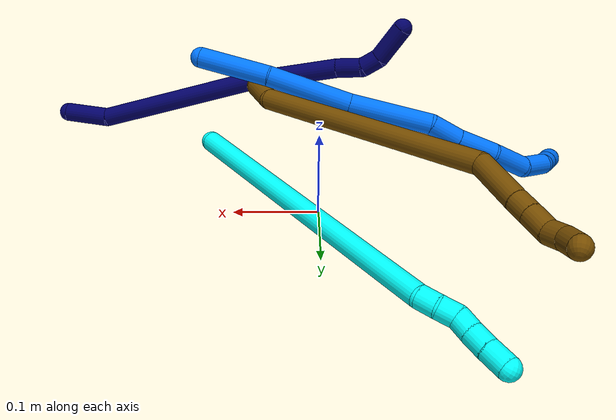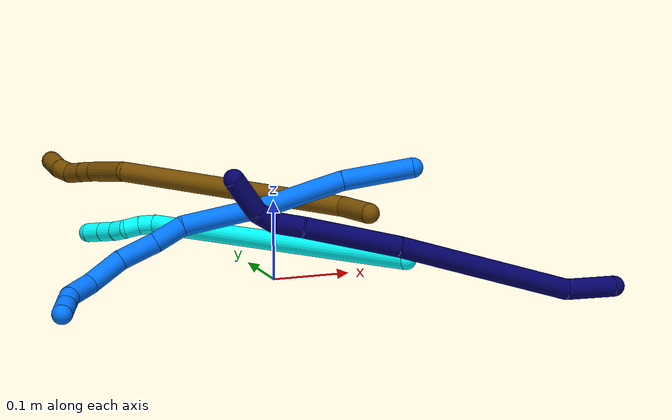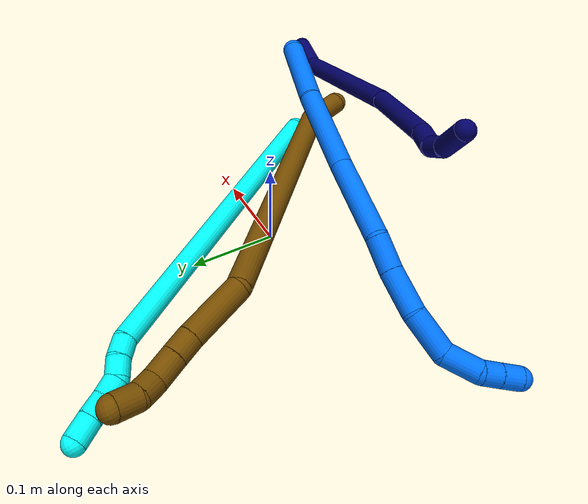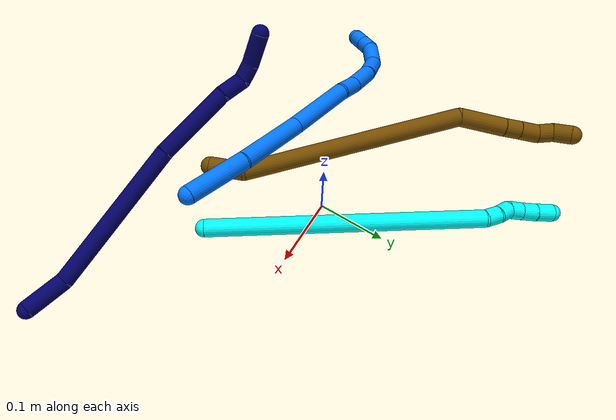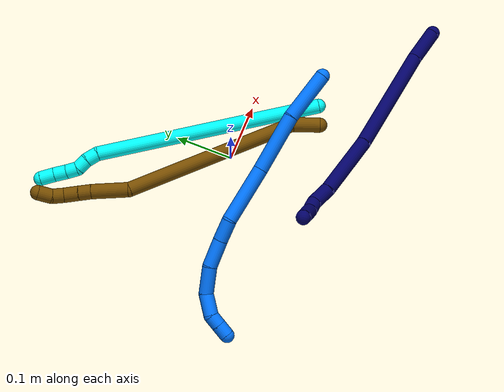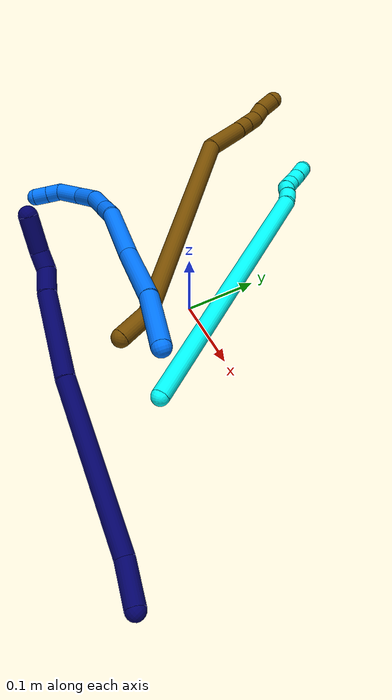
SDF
<sdf version="1.7">
 <world name="default">
  <model name="3">
   <static>0</static>
   <link name="3">
    <collision name="collision-cylinder-e_1_1_4">
     <pose>-0.156184 0.083893 -0.081593 -2.3423 -0.927747 1.73927</pose>
     <geometry><cylinder><radius>0.0125</radius><length>0.390327</length></cylinder></geometry>
     <surface>
      <friction><ode><mu>1.16</mu><mu2>1.16</mu2><slip1>0</slip1><slip2>0</slip2></ode></friction>
      <contact><ode><kp>1e+06</kp><kd>1</kd><max_vel>0</max_vel><min_depth>0.001</min_depth></ode></contact>
     </surface>
    </collision>
    <visual name="visual-cylinder-e_1_1_4">
     <pose>-0.156184 0.083893 -0.081593 -2.3423 -0.927747 1.73927</pose>
     <geometry><cylinder><radius>0.0125</radius><length>0.390327</length></cylinder></geometry>
     <material><ambient>0.003922 1 0.996078 1</ambient></material>
    </visual>
    <collision name="collision-cylinder-e_2_4_5">
     <pose>-0.319624 0.170638 -0.170349 -2.76254 -0.755134 2.24056</pose>
     <geometry><cylinder><radius>0.0125</radius><length>0.021173</length></cylinder></geometry>
     <surface>
      <friction><ode><mu>1.16</mu><mu2>1.16</mu2><slip1>0</slip1><slip2>0</slip2></ode></friction>
      <contact><ode><kp>1e+06</kp><kd>1</kd><max_vel>0</max_vel><min_depth>0.001</min_depth></ode></contact>
     </surface>
    </collision>
    <visual name="visual-cylinder-e_2_4_5">
     <pose>-0.319624 0.170638 -0.170349 -2.76254 -0.755134 2.24056</pose>
     <geometry><cylinder><radius>0.0125</radius><length>0.021173</length></cylinder></geometry>
     <material><ambient>0.003922 1 0.996078 1</ambient></material>
    </visual>
    <collision name="collision-cylinder-e_3_5_6">
     <pose>-0.332169 0.175461 -0.186095 -2.91596 -0.54088 2.36567</pose>
     <geometry><cylinder><radius>0.0125</radius><length>0.020548</length></cylinder></geometry>
     <surface>
      <friction><ode><mu>1.16</mu><mu2>1.16</mu2><slip1>0</slip1><slip2>0</slip2></ode></friction>
      <contact><ode><kp>1e+06</kp><kd>1</kd><max_vel>0</max_vel><min_depth>0.001</min_depth></ode></contact>
     </surface>
    </collision>
    <visual name="visual-cylinder-e_3_5_6">
     <pose>-0.332169 0.175461 -0.186095 -2.91596 -0.54088 2.36567</pose>
     <geometry><cylinder><radius>0.0125</radius><length>0.020548</length></cylinder></geometry>
     <material><ambient>0.003922 1 0.996078 1</ambient></material>
    </visual>
    <collision name="collision-cylinder-e_4_6_7">
     <pose>-0.343689 0.183439 -0.200003 -2.29599 -0.660015 1.30137</pose>
     <geometry><cylinder><radius>0.0125</radius><length>0.020322</length></cylinder></geometry>
     <surface>
      <friction><ode><mu>1.16</mu><mu2>1.16</mu2><slip1>0</slip1><slip2>0</slip2></ode></friction>
      <contact><ode><kp>1e+06</kp><kd>1</kd><max_vel>0</max_vel><min_depth>0.001</min_depth></ode></contact>
     </surface>
    </collision>
    <visual name="visual-cylinder-e_4_6_7">
     <pose>-0.343689 0.183439 -0.200003 -2.29599 -0.660015 1.30137</pose>
     <geometry><cylinder><radius>0.0125</radius><length>0.020322</length></cylinder></geometry>
     <material><ambient>0.003922 1 0.996078 1</ambient></material>
    </visual>
    <collision name="collision-cylinder-e_5_7_8">
     <pose>-0.357727 0.195588 -0.210539 -2.27447 -0.769768 1.4377</pose>
     <geometry><cylinder><radius>0.0125</radius><length>0.022437</length></cylinder></geometry>
     <surface>
      <friction><ode><mu>1.16</mu><mu2>1.16</mu2><slip1>0</slip1><slip2>0</slip2></ode></friction>
      <contact><ode><kp>1e+06</kp><kd>1</kd><max_vel>0</max_vel><min_depth>0.001</min_depth></ode></contact>
     </surface>
    </collision>
    <visual name="visual-cylinder-e_5_7_8">
     <pose>-0.357727 0.195588 -0.210539 -2.27447 -0.769768 1.4377</pose>
     <geometry><cylinder><radius>0.0125</radius><length>0.022437</length></cylinder></geometry>
     <material><ambient>0.003922 1 0.996078 1</ambient></material>
    </visual>
    <collision name="collision-cylinder-e_6_8_2">
     <pose>-0.374285 0.208188 -0.222107 -2.34828 -0.767988 1.53482</pose>
     <geometry><cylinder><radius>0.0125</radius><length>0.025193</length></cylinder></geometry>
     <surface>
      <friction><ode><mu>1.16</mu><mu2>1.16</mu2><slip1>0</slip1><slip2>0</slip2></ode></friction>
      <contact><ode><kp>1e+06</kp><kd>1</kd><max_vel>0</max_vel><min_depth>0.001</min_depth></ode></contact>
     </surface>
    </collision>
    <visual name="visual-cylinder-e_6_8_2">
     <pose>-0.374285 0.208188 -0.222107 -2.34828 -0.767988 1.53482</pose>
     <geometry><cylinder><radius>0.0125</radius><length>0.025193</length></cylinder></geometry>
     <material><ambient>0.003922 1 0.996078 1</ambient></material>
    </visual>
    <collision name="collision-sphere-2">
     <pose>-0.383036 0.214645 -0.228463 0 -0 0</pose>
     <geometry><sphere><radius>0.0125</radius></sphere></geometry>
     <surface>
      <friction><ode><mu>1.16</mu><mu2>1.16</mu2><slip1>0</slip1><slip2>0</slip2></ode></friction>
      <contact><ode><kp>1e+06</kp><kd>1</kd><max_vel>0</max_vel><min_depth>0.001</min_depth></ode></contact>
     </surface>
    </collision>
    <visual name="visual-sphere-2">
     <pose>-0.383036 0.214645 -0.228463 0 -0 0</pose>
     <geometry><sphere><radius>0.0125</radius></sphere></geometry>
     <material><ambient>0.003922 1 0.996078 1</ambient></material>
    </visual>
    <collision name="collision-sphere-4">
     <pose>-0.312368 0.167785 -0.163187 0 -0 0</pose>
     <geometry><sphere><radius>0.0125</radius></sphere></geometry>
     <surface>
      <friction><ode><mu>1.16</mu><mu2>1.16</mu2><slip1>0</slip1><slip2>0</slip2></ode></friction>
      <contact><ode><kp>1e+06</kp><kd>1</kd><max_vel>0</max_vel><min_depth>0.001</min_depth></ode></contact>
     </surface>
    </collision>
    <visual name="visual-sphere-4">
     <pose>-0.312368 0.167785 -0.163187 0 -0 0</pose>
     <geometry><sphere><radius>0.0125</radius></sphere></geometry>
     <material><ambient>0.003922 1 0.996078 1</ambient></material>
    </visual>
    <collision name="collision-sphere-1">
     <geometry><sphere><radius>0.0125</radius></sphere></geometry>
     <surface>
      <friction><ode><mu>1.16</mu><mu2>1.16</mu2><slip1>0</slip1><slip2>0</slip2></ode></friction>
      <contact><ode><kp>1e+06</kp><kd>1</kd><max_vel>0</max_vel><min_depth>0.001</min_depth></ode></contact>
     </surface>
    </collision>
    <visual name="visual-sphere-1">
     <geometry><sphere><radius>0.0125</radius></sphere></geometry>
     <material><ambient>0.003922 1 0.996078 1</ambient></material>
    </visual>
    <collision name="collision-sphere-8">
     <pose>-0.365535 0.20173 -0.215751 0 -0 0</pose>
     <geometry><sphere><radius>0.0125</radius></sphere></geometry>
     <surface>
      <friction><ode><mu>1.16</mu><mu2>1.16</mu2><slip1>0</slip1><slip2>0</slip2></ode></friction>
      <contact><ode><kp>1e+06</kp><kd>1</kd><max_vel>0</max_vel><min_depth>0.001</min_depth></ode></contact>
     </surface>
    </collision>
    <visual name="visual-sphere-8">
     <pose>-0.365535 0.20173 -0.215751 0 -0 0</pose>
     <geometry><sphere><radius>0.0125</radius></sphere></geometry>
     <material><ambient>0.003922 1 0.996078 1</ambient></material>
    </visual>
    <collision name="collision-sphere-5">
     <pose>-0.32688 0.173491 -0.17751 0 -0 0</pose>
     <geometry><sphere><radius>0.0125</radius></sphere></geometry>
     <surface>
      <friction><ode><mu>1.16</mu><mu2>1.16</mu2><slip1>0</slip1><slip2>0</slip2></ode></friction>
      <contact><ode><kp>1e+06</kp><kd>1</kd><max_vel>0</max_vel><min_depth>0.001</min_depth></ode></contact>
     </surface>
    </collision>
    <visual name="visual-sphere-5">
     <pose>-0.32688 0.173491 -0.17751 0 -0 0</pose>
     <geometry><sphere><radius>0.0125</radius></sphere></geometry>
     <material><ambient>0.003922 1 0.996078 1</ambient></material>
    </visual>
    <collision name="collision-sphere-6">
     <pose>-0.337459 0.177431 -0.194679 0 -0 0</pose>
     <geometry><sphere><radius>0.0125</radius></sphere></geometry>
     <surface>
      <friction><ode><mu>1.16</mu><mu2>1.16</mu2><slip1>0</slip1><slip2>0</slip2></ode></friction>
      <contact><ode><kp>1e+06</kp><kd>1</kd><max_vel>0</max_vel><min_depth>0.001</min_depth></ode></contact>
     </surface>
    </collision>
    <visual name="visual-sphere-6">
     <pose>-0.337459 0.177431 -0.194679 0 -0 0</pose>
     <geometry><sphere><radius>0.0125</radius></sphere></geometry>
     <material><ambient>0.003922 1 0.996078 1</ambient></material>
    </visual>
    <collision name="collision-sphere-7">
     <pose>-0.349919 0.189446 -0.205327 0 -0 0</pose>
     <geometry><sphere><radius>0.0125</radius></sphere></geometry>
     <surface>
      <friction><ode><mu>1.16</mu><mu2>1.16</mu2><slip1>0</slip1><slip2>0</slip2></ode></friction>
      <contact><ode><kp>1e+06</kp><kd>1</kd><max_vel>0</max_vel><min_depth>0.001</min_depth></ode></contact>
     </surface>
    </collision>
    <visual name="visual-sphere-7">
     <pose>-0.349919 0.189446 -0.205327 0 -0 0</pose>
     <geometry><sphere><radius>0.0125</radius></sphere></geometry>
     <material><ambient>0.003922 1 0.996078 1</ambient></material>
    </visual>
    <inertial>
     <pose>-0.197991 0.10665 -0.107325 0 -0 0</pose>
     <mass>0.5</mass>
     <inertia>
      <ixx>0.002414</ixx>
      <ixy>0</ixy>
      <ixz>0</ixz>
      <iyy>0.006359</iyy>
      <iyz>0</iyz>
      <izz>0.001825</izz>
     </inertia>
    </inertial>
   </link>
   <pose>0.132309 -0.1097 0.038838 -0.834812 0.630093 -0.987264</pose>
  </model>
  <model name="7">
   <static>0</static>
   <link name="7">
    <collision name="collision-cylinder-e_1_1_4">
     <pose>-0.006939 0.015957 -0.023334 -2.54178 -0.240711 0.745611</pose>
     <geometry><cylinder><radius>0.0125</radius><length>0.058216</length></cylinder></geometry>
     <surface>
      <friction><ode><mu>1.16</mu><mu2>1.16</mu2><slip1>0</slip1><slip2>0</slip2></ode></friction>
      <contact><ode><kp>1e+06</kp><kd>1</kd><max_vel>0</max_vel><min_depth>0.001</min_depth></ode></contact>
     </surface>
    </collision>
    <visual name="visual-cylinder-e_1_1_4">
     <pose>-0.006939 0.015957 -0.023334 -2.54178 -0.240711 0.745611</pose>
     <geometry><cylinder><radius>0.0125</radius><length>0.058216</length></cylinder></geometry>
     <material><ambient>0.003922 0 0.403922 1</ambient></material>
    </visual>
    <collision name="collision-cylinder-e_2_4_5">
     <pose>-0.049025 0.056212 -0.147236 -2.90453 -0.327475 1.8925</pose>
     <geometry><cylinder><radius>0.0125</radius><length>0.218535</length></cylinder></geometry>
     <surface>
      <friction><ode><mu>1.16</mu><mu2>1.16</mu2><slip1>0</slip1><slip2>0</slip2></ode></friction>
      <contact><ode><kp>1e+06</kp><kd>1</kd><max_vel>0</max_vel><min_depth>0.001</min_depth></ode></contact>
     </surface>
    </collision>
    <visual name="visual-cylinder-e_2_4_5">
     <pose>-0.049025 0.056212 -0.147236 -2.90453 -0.327475 1.8925</pose>
     <geometry><cylinder><radius>0.0125</radius><length>0.218535</length></cylinder></geometry>
     <material><ambient>0.003922 0 0.403922 1</ambient></material>
    </visual>
    <collision name="collision-cylinder-e_3_5_6">
     <pose>-0.105461 0.099101 -0.298154 -2.78788 -0.377627 1.63765</pose>
     <geometry><cylinder><radius>0.0125</radius><length>0.115485</length></cylinder></geometry>
     <surface>
      <friction><ode><mu>1.16</mu><mu2>1.16</mu2><slip1>0</slip1><slip2>0</slip2></ode></friction>
      <contact><ode><kp>1e+06</kp><kd>1</kd><max_vel>0</max_vel><min_depth>0.001</min_depth></ode></contact>
     </surface>
    </collision>
    <visual name="visual-cylinder-e_3_5_6">
     <pose>-0.105461 0.099101 -0.298154 -2.78788 -0.377627 1.63765</pose>
     <geometry><cylinder><radius>0.0125</radius><length>0.115485</length></cylinder></geometry>
     <material><ambient>0.003922 0 0.403922 1</ambient></material>
    </visual>
    <collision name="collision-cylinder-e_4_6_7">
     <pose>-0.134639 0.125174 -0.361837 -2.63026 -0.47629 1.49691</pose>
     <geometry><cylinder><radius>0.0125</radius><length>0.034404</length></cylinder></geometry>
     <surface>
      <friction><ode><mu>1.16</mu><mu2>1.16</mu2><slip1>0</slip1><slip2>0</slip2></ode></friction>
      <contact><ode><kp>1e+06</kp><kd>1</kd><max_vel>0</max_vel><min_depth>0.001</min_depth></ode></contact>
     </surface>
    </collision>
    <visual name="visual-cylinder-e_4_6_7">
     <pose>-0.134639 0.125174 -0.361837 -2.63026 -0.47629 1.49691</pose>
     <geometry><cylinder><radius>0.0125</radius><length>0.034404</length></cylinder></geometry>
     <material><ambient>0.003922 0 0.403922 1</ambient></material>
    </visual>
    <collision name="collision-cylinder-e_5_7_8">
     <pose>-0.147266 0.132144 -0.386515 3.09662 -0.395452 -2.91801</pose>
     <geometry><cylinder><radius>0.0125</radius><length>0.024615</length></cylinder></geometry>
     <surface>
      <friction><ode><mu>1.16</mu><mu2>1.16</mu2><slip1>0</slip1><slip2>0</slip2></ode></friction>
      <contact><ode><kp>1e+06</kp><kd>1</kd><max_vel>0</max_vel><min_depth>0.001</min_depth></ode></contact>
     </surface>
    </collision>
    <visual name="visual-cylinder-e_5_7_8">
     <pose>-0.147266 0.132144 -0.386515 3.09662 -0.395452 -2.91801</pose>
     <geometry><cylinder><radius>0.0125</radius><length>0.024615</length></cylinder></geometry>
     <material><ambient>0.003922 0 0.403922 1</ambient></material>
    </visual>
    <collision name="collision-cylinder-e_6_8_2">
     <pose>-0.165012 0.122342 -0.416262 2.674 -0.56281 -1.76338</pose>
     <geometry><cylinder><radius>0.0125</radius><length>0.048746</length></cylinder></geometry>
     <surface>
      <friction><ode><mu>1.16</mu><mu2>1.16</mu2><slip1>0</slip1><slip2>0</slip2></ode></friction>
      <contact><ode><kp>1e+06</kp><kd>1</kd><max_vel>0</max_vel><min_depth>0.001</min_depth></ode></contact>
     </surface>
    </collision>
    <visual name="visual-cylinder-e_6_8_2">
     <pose>-0.165012 0.122342 -0.416262 2.674 -0.56281 -1.76338</pose>
     <geometry><cylinder><radius>0.0125</radius><length>0.048746</length></cylinder></geometry>
     <material><ambient>0.003922 0 0.403922 1</ambient></material>
    </visual>
    <collision name="collision-sphere-2">
     <pose>-0.178017 0.11305 -0.434663 0 -0 0</pose>
     <geometry><sphere><radius>0.0125</radius></sphere></geometry>
     <surface>
      <friction><ode><mu>1.16</mu><mu2>1.16</mu2><slip1>0</slip1><slip2>0</slip2></ode></friction>
      <contact><ode><kp>1e+06</kp><kd>1</kd><max_vel>0</max_vel><min_depth>0.001</min_depth></ode></contact>
     </surface>
    </collision>
    <visual name="visual-sphere-2">
     <pose>-0.178017 0.11305 -0.434663 0 -0 0</pose>
     <geometry><sphere><radius>0.0125</radius></sphere></geometry>
     <material><ambient>0.003922 0 0.403922 1</ambient></material>
    </visual>
    <collision name="collision-sphere-4">
     <pose>-0.013878 0.031915 -0.046668 0 -0 0</pose>
     <geometry><sphere><radius>0.0125</radius></sphere></geometry>
     <surface>
      <friction><ode><mu>1.16</mu><mu2>1.16</mu2><slip1>0</slip1><slip2>0</slip2></ode></friction>
      <contact><ode><kp>1e+06</kp><kd>1</kd><max_vel>0</max_vel><min_depth>0.001</min_depth></ode></contact>
     </surface>
    </collision>
    <visual name="visual-sphere-4">
     <pose>-0.013878 0.031915 -0.046668 0 -0 0</pose>
     <geometry><sphere><radius>0.0125</radius></sphere></geometry>
     <material><ambient>0.003922 0 0.403922 1</ambient></material>
    </visual>
    <collision name="collision-sphere-1">
     <geometry><sphere><radius>0.0125</radius></sphere></geometry>
     <surface>
      <friction><ode><mu>1.16</mu><mu2>1.16</mu2><slip1>0</slip1><slip2>0</slip2></ode></friction>
      <contact><ode><kp>1e+06</kp><kd>1</kd><max_vel>0</max_vel><min_depth>0.001</min_depth></ode></contact>
     </surface>
    </collision>
    <visual name="visual-sphere-1">
     <geometry><sphere><radius>0.0125</radius></sphere></geometry>
     <material><ambient>0.003922 0 0.403922 1</ambient></material>
    </visual>
    <collision name="collision-sphere-8">
     <pose>-0.152008 0.131633 -0.397861 0 -0 0</pose>
     <geometry><sphere><radius>0.0125</radius></sphere></geometry>
     <surface>
      <friction><ode><mu>1.16</mu><mu2>1.16</mu2><slip1>0</slip1><slip2>0</slip2></ode></friction>
      <contact><ode><kp>1e+06</kp><kd>1</kd><max_vel>0</max_vel><min_depth>0.001</min_depth></ode></contact>
     </surface>
    </collision>
    <visual name="visual-sphere-8">
     <pose>-0.152008 0.131633 -0.397861 0 -0 0</pose>
     <geometry><sphere><radius>0.0125</radius></sphere></geometry>
     <material><ambient>0.003922 0 0.403922 1</ambient></material>
    </visual>
    <collision name="collision-sphere-5">
     <pose>-0.084171 0.080509 -0.247803 0 -0 0</pose>
     <geometry><sphere><radius>0.0125</radius></sphere></geometry>
     <surface>
      <friction><ode><mu>1.16</mu><mu2>1.16</mu2><slip1>0</slip1><slip2>0</slip2></ode></friction>
      <contact><ode><kp>1e+06</kp><kd>1</kd><max_vel>0</max_vel><min_depth>0.001</min_depth></ode></contact>
     </surface>
    </collision>
    <visual name="visual-sphere-5">
     <pose>-0.084171 0.080509 -0.247803 0 -0 0</pose>
     <geometry><sphere><radius>0.0125</radius></sphere></geometry>
     <material><ambient>0.003922 0 0.403922 1</ambient></material>
    </visual>
    <collision name="collision-sphere-6">
     <pose>-0.126752 0.117693 -0.348505 0 -0 0</pose>
     <geometry><sphere><radius>0.0125</radius></sphere></geometry>
     <surface>
      <friction><ode><mu>1.16</mu><mu2>1.16</mu2><slip1>0</slip1><slip2>0</slip2></ode></friction>
      <contact><ode><kp>1e+06</kp><kd>1</kd><max_vel>0</max_vel><min_depth>0.001</min_depth></ode></contact>
     </surface>
    </collision>
    <visual name="visual-sphere-6">
     <pose>-0.126752 0.117693 -0.348505 0 -0 0</pose>
     <geometry><sphere><radius>0.0125</radius></sphere></geometry>
     <material><ambient>0.003922 0 0.403922 1</ambient></material>
    </visual>
    <collision name="collision-sphere-7">
     <pose>-0.142525 0.132654 -0.375169 0 -0 0</pose>
     <geometry><sphere><radius>0.0125</radius></sphere></geometry>
     <surface>
      <friction><ode><mu>1.16</mu><mu2>1.16</mu2><slip1>0</slip1><slip2>0</slip2></ode></friction>
      <contact><ode><kp>1e+06</kp><kd>1</kd><max_vel>0</max_vel><min_depth>0.001</min_depth></ode></contact>
     </surface>
    </collision>
    <visual name="visual-sphere-7">
     <pose>-0.142525 0.132654 -0.375169 0 -0 0</pose>
     <geometry><sphere><radius>0.0125</radius></sphere></geometry>
     <material><ambient>0.003922 0 0.403922 1</ambient></material>
    </visual>
    <inertial>
     <pose>-0.079195 0.076361 -0.220441 0 -0 0</pose>
     <mass>0.5</mass>
     <inertia>
      <ixx>0.000643</ixx>
      <ixy>0</ixy>
      <ixz>0</ixz>
      <iyy>0.001284</iyy>
      <iyz>0</iyz>
      <izz>6.5e-05</izz>
     </inertia>
    </inertial>
   </link>
   <pose>0.345437 -0.245159 0.01854 -1.95436 0.598638 -1.48186</pose>
  </model>
  <model name="12">
   <static>0</static>
   <link name="12">
    <collision name="collision-cylinder-e_1_1_4">
     <pose>-0.006295 0.014815 -0.01678 -2.41831 -0.274123 0.69927</pose>
     <geometry><cylinder><radius>0.0125</radius><length>0.046506</length></cylinder></geometry>
     <surface>
      <friction><ode><mu>1.16</mu><mu2>1.16</mu2><slip1>0</slip1><slip2>0</slip2></ode></friction>
      <contact><ode><kp>1e+06</kp><kd>1</kd><max_vel>0</max_vel><min_depth>0.001</min_depth></ode></contact>
     </surface>
    </collision>
    <visual name="visual-cylinder-e_1_1_4">
     <pose>-0.006295 0.014815 -0.01678 -2.41831 -0.274123 0.69927</pose>
     <geometry><cylinder><radius>0.0125</radius><length>0.046506</length></cylinder></geometry>
     <material><ambient>0.466667 0.301961 0 1</ambient></material>
    </visual>
    <collision name="collision-cylinder-e_2_4_5">
     <pose>-0.094599 0.13962 -0.092342 -2.06161 -0.581696 0.926297</pose>
     <geometry><cylinder><radius>0.0125</radius><length>0.29852</length></cylinder></geometry>
     <surface>
      <friction><ode><mu>1.16</mu><mu2>1.16</mu2><slip1>0</slip1><slip2>0</slip2></ode></friction>
      <contact><ode><kp>1e+06</kp><kd>1</kd><max_vel>0</max_vel><min_depth>0.001</min_depth></ode></contact>
     </surface>
    </collision>
    <visual name="visual-cylinder-e_2_4_5">
     <pose>-0.094599 0.13962 -0.092342 -2.06161 -0.581696 0.926297</pose>
     <geometry><cylinder><radius>0.0125</radius><length>0.29852</length></cylinder></geometry>
     <material><ambient>0.466667 0.301961 0 1</ambient></material>
    </visual>
    <collision name="collision-cylinder-e_3_5_6">
     <pose>-0.18842 0.265844 -0.175155 -2.54748 -0.386751 1.13821</pose>
     <geometry><cylinder><radius>0.0125</radius><length>0.062627</length></cylinder></geometry>
     <surface>
      <friction><ode><mu>1.16</mu><mu2>1.16</mu2><slip1>0</slip1><slip2>0</slip2></ode></friction>
      <contact><ode><kp>1e+06</kp><kd>1</kd><max_vel>0</max_vel><min_depth>0.001</min_depth></ode></contact>
     </surface>
    </collision>
    <visual name="visual-cylinder-e_3_5_6">
     <pose>-0.18842 0.265844 -0.175155 -2.54748 -0.386751 1.13821</pose>
     <geometry><cylinder><radius>0.0125</radius><length>0.062627</length></cylinder></geometry>
     <material><ambient>0.466667 0.301961 0 1</ambient></material>
    </visual>
    <collision name="collision-cylinder-e_4_6_7">
     <pose>-0.204948 0.287622 -0.20703 -2.52635 -0.456527 1.26274</pose>
     <geometry><cylinder><radius>0.0125</radius><length>0.021402</length></cylinder></geometry>
     <surface>
      <friction><ode><mu>1.16</mu><mu2>1.16</mu2><slip1>0</slip1><slip2>0</slip2></ode></friction>
      <contact><ode><kp>1e+06</kp><kd>1</kd><max_vel>0</max_vel><min_depth>0.001</min_depth></ode></contact>
     </surface>
    </collision>
    <visual name="visual-cylinder-e_4_6_7">
     <pose>-0.204948 0.287622 -0.20703 -2.52635 -0.456527 1.26274</pose>
     <geometry><cylinder><radius>0.0125</radius><length>0.021402</length></cylinder></geometry>
     <material><ambient>0.466667 0.301961 0 1</ambient></material>
    </visual>
    <collision name="collision-cylinder-e_5_7_8">
     <pose>-0.215633 0.299679 -0.224575 -2.55027 -0.472213 1.3371</pose>
     <geometry><cylinder><radius>0.0125</radius><length>0.02624</length></cylinder></geometry>
     <surface>
      <friction><ode><mu>1.16</mu><mu2>1.16</mu2><slip1>0</slip1><slip2>0</slip2></ode></friction>
      <contact><ode><kp>1e+06</kp><kd>1</kd><max_vel>0</max_vel><min_depth>0.001</min_depth></ode></contact>
     </surface>
    </collision>
    <visual name="visual-cylinder-e_5_7_8">
     <pose>-0.215633 0.299679 -0.224575 -2.55027 -0.472213 1.3371</pose>
     <geometry><cylinder><radius>0.0125</radius><length>0.02624</length></cylinder></geometry>
     <material><ambient>0.466667 0.301961 0 1</ambient></material>
    </visual>
    <collision name="collision-cylinder-e_6_8_9">
     <pose>-0.224709 0.314307 -0.239822 -2.1704 -0.306218 0.568951</pose>
     <geometry><cylinder><radius>0.0125</radius><length>0.020617</length></cylinder></geometry>
     <surface>
      <friction><ode><mu>1.16</mu><mu2>1.16</mu2><slip1>0</slip1><slip2>0</slip2></ode></friction>
      <contact><ode><kp>1e+06</kp><kd>1</kd><max_vel>0</max_vel><min_depth>0.001</min_depth></ode></contact>
     </surface>
    </collision>
    <visual name="visual-cylinder-e_6_8_9">
     <pose>-0.224709 0.314307 -0.239822 -2.1704 -0.306218 0.568951</pose>
     <geometry><cylinder><radius>0.0125</radius><length>0.020617</length></cylinder></geometry>
     <material><ambient>0.466667 0.301961 0 1</ambient></material>
    </visual>
    <collision name="collision-cylinder-e_7_9_2">
     <pose>-0.227758 0.331194 -0.25362 -2.32562 0.004861 -0.011247</pose>
     <geometry><cylinder><radius>0.0125</radius><length>0.024087</length></cylinder></geometry>
     <surface>
      <friction><ode><mu>1.16</mu><mu2>1.16</mu2><slip1>0</slip1><slip2>0</slip2></ode></friction>
      <contact><ode><kp>1e+06</kp><kd>1</kd><max_vel>0</max_vel><min_depth>0.001</min_depth></ode></contact>
     </surface>
    </collision>
    <visual name="visual-cylinder-e_7_9_2">
     <pose>-0.227758 0.331194 -0.25362 -2.32562 0.004861 -0.011247</pose>
     <geometry><cylinder><radius>0.0125</radius><length>0.024087</length></cylinder></geometry>
     <material><ambient>0.466667 0.301961 0 1</ambient></material>
    </visual>
    <collision name="collision-sphere-2">
     <pose>-0.227699 0.339966 -0.261872 0 -0 0</pose>
     <geometry><sphere><radius>0.0125</radius></sphere></geometry>
     <surface>
      <friction><ode><mu>1.16</mu><mu2>1.16</mu2><slip1>0</slip1><slip2>0</slip2></ode></friction>
      <contact><ode><kp>1e+06</kp><kd>1</kd><max_vel>0</max_vel><min_depth>0.001</min_depth></ode></contact>
     </surface>
    </collision>
    <visual name="visual-sphere-2">
     <pose>-0.227699 0.339966 -0.261872 0 -0 0</pose>
     <geometry><sphere><radius>0.0125</radius></sphere></geometry>
     <material><ambient>0.466667 0.301961 0 1</ambient></material>
    </visual>
    <collision name="collision-sphere-9">
     <pose>-0.227816 0.322421 -0.245368 0 -0 0</pose>
     <geometry><sphere><radius>0.0125</radius></sphere></geometry>
     <surface>
      <friction><ode><mu>1.16</mu><mu2>1.16</mu2><slip1>0</slip1><slip2>0</slip2></ode></friction>
      <contact><ode><kp>1e+06</kp><kd>1</kd><max_vel>0</max_vel><min_depth>0.001</min_depth></ode></contact>
     </surface>
    </collision>
    <visual name="visual-sphere-9">
     <pose>-0.227816 0.322421 -0.245368 0 -0 0</pose>
     <geometry><sphere><radius>0.0125</radius></sphere></geometry>
     <material><ambient>0.466667 0.301961 0 1</ambient></material>
    </visual>
    <collision name="collision-sphere-4">
     <pose>-0.012589 0.029631 -0.033561 0 -0 0</pose>
     <geometry><sphere><radius>0.0125</radius></sphere></geometry>
     <surface>
      <friction><ode><mu>1.16</mu><mu2>1.16</mu2><slip1>0</slip1><slip2>0</slip2></ode></friction>
      <contact><ode><kp>1e+06</kp><kd>1</kd><max_vel>0</max_vel><min_depth>0.001</min_depth></ode></contact>
     </surface>
    </collision>
    <visual name="visual-sphere-4">
     <pose>-0.012589 0.029631 -0.033561 0 -0 0</pose>
     <geometry><sphere><radius>0.0125</radius></sphere></geometry>
     <material><ambient>0.466667 0.301961 0 1</ambient></material>
    </visual>
    <collision name="collision-sphere-1">
     <geometry><sphere><radius>0.0125</radius></sphere></geometry>
     <surface>
      <friction><ode><mu>1.16</mu><mu2>1.16</mu2><slip1>0</slip1><slip2>0</slip2></ode></friction>
      <contact><ode><kp>1e+06</kp><kd>1</kd><max_vel>0</max_vel><min_depth>0.001</min_depth></ode></contact>
     </surface>
    </collision>
    <visual name="visual-sphere-1">
     <geometry><sphere><radius>0.0125</radius></sphere></geometry>
     <material><ambient>0.466667 0.301961 0 1</ambient></material>
    </visual>
    <collision name="collision-sphere-8">
     <pose>-0.221601 0.306192 -0.234275 0 -0 0</pose>
     <geometry><sphere><radius>0.0125</radius></sphere></geometry>
     <surface>
      <friction><ode><mu>1.16</mu><mu2>1.16</mu2><slip1>0</slip1><slip2>0</slip2></ode></friction>
      <contact><ode><kp>1e+06</kp><kd>1</kd><max_vel>0</max_vel><min_depth>0.001</min_depth></ode></contact>
     </surface>
    </collision>
    <visual name="visual-sphere-8">
     <pose>-0.221601 0.306192 -0.234275 0 -0 0</pose>
     <geometry><sphere><radius>0.0125</radius></sphere></geometry>
     <material><ambient>0.466667 0.301961 0 1</ambient></material>
    </visual>
    <collision name="collision-sphere-5">
     <pose>-0.176609 0.24961 -0.151124 0 -0 0</pose>
     <geometry><sphere><radius>0.0125</radius></sphere></geometry>
     <surface>
      <friction><ode><mu>1.16</mu><mu2>1.16</mu2><slip1>0</slip1><slip2>0</slip2></ode></friction>
      <contact><ode><kp>1e+06</kp><kd>1</kd><max_vel>0</max_vel><min_depth>0.001</min_depth></ode></contact>
     </surface>
    </collision>
    <visual name="visual-sphere-5">
     <pose>-0.176609 0.24961 -0.151124 0 -0 0</pose>
     <geometry><sphere><radius>0.0125</radius></sphere></geometry>
     <material><ambient>0.466667 0.301961 0 1</ambient></material>
    </visual>
    <collision name="collision-sphere-6">
     <pose>-0.200231 0.282078 -0.199187 0 -0 0</pose>
     <geometry><sphere><radius>0.0125</radius></sphere></geometry>
     <surface>
      <friction><ode><mu>1.16</mu><mu2>1.16</mu2><slip1>0</slip1><slip2>0</slip2></ode></friction>
      <contact><ode><kp>1e+06</kp><kd>1</kd><max_vel>0</max_vel><min_depth>0.001</min_depth></ode></contact>
     </surface>
    </collision>
    <visual name="visual-sphere-6">
     <pose>-0.200231 0.282078 -0.199187 0 -0 0</pose>
     <geometry><sphere><radius>0.0125</radius></sphere></geometry>
     <material><ambient>0.466667 0.301961 0 1</ambient></material>
    </visual>
    <collision name="collision-sphere-7">
     <pose>-0.209665 0.293165 -0.214874 0 -0 0</pose>
     <geometry><sphere><radius>0.0125</radius></sphere></geometry>
     <surface>
      <friction><ode><mu>1.16</mu><mu2>1.16</mu2><slip1>0</slip1><slip2>0</slip2></ode></friction>
      <contact><ode><kp>1e+06</kp><kd>1</kd><max_vel>0</max_vel><min_depth>0.001</min_depth></ode></contact>
     </surface>
    </collision>
    <visual name="visual-sphere-7">
     <pose>-0.209665 0.293165 -0.214874 0 -0 0</pose>
     <geometry><sphere><radius>0.0125</radius></sphere></geometry>
     <material><ambient>0.466667 0.301961 0 1</ambient></material>
    </visual>
    <inertial>
     <pose>-0.120992 0.174989 -0.121386 0 -0 0</pose>
     <mass>0.5</mass>
     <inertia>
      <ixx>0.00264</ixx>
      <ixy>0</ixy>
      <ixz>0</ixz>
      <iyy>0.001767</iyy>
      <iyz>0</iyz>
      <izz>-0.000448</izz>
     </inertia>
    </inertial>
   </link>
   <pose>0.074701 -0.131413 0.105305 1.07272 -0.602519 0.013414</pose>
  </model>
  <model name="14">
   <static>0</static>
   <link name="14">
    <collision name="collision-cylinder-e_1_1_4">
     <pose>-0.028618 0.004516 0.032292 -0.138935 -0.720338 0.052395</pose>
     <geometry><cylinder><radius>0.0125</radius><length>0.086767</length></cylinder></geometry>
     <surface>
      <friction><ode><mu>1.16</mu><mu2>1.16</mu2><slip1>0</slip1><slip2>0</slip2></ode></friction>
      <contact><ode><kp>1e+06</kp><kd>1</kd><max_vel>0</max_vel><min_depth>0.001</min_depth></ode></contact>
     </surface>
    </collision>
    <visual name="visual-cylinder-e_1_1_4">
     <pose>-0.028618 0.004516 0.032292 -0.138935 -0.720338 0.052395</pose>
     <geometry><cylinder><radius>0.0125</radius><length>0.086767</length></cylinder></geometry>
     <material><ambient>0 0.462745 1 1</ambient></material>
    </visual>
    <collision name="collision-cylinder-e_2_4_5">
     <pose>-0.094933 0.008019 0.098812 0.029566 -0.833392 -0.013087</pose>
     <geometry><cylinder><radius>0.0125</radius><length>0.101855</length></cylinder></geometry>
     <surface>
      <friction><ode><mu>1.16</mu><mu2>1.16</mu2><slip1>0</slip1><slip2>0</slip2></ode></friction>
      <contact><ode><kp>1e+06</kp><kd>1</kd><max_vel>0</max_vel><min_depth>0.001</min_depth></ode></contact>
     </surface>
    </collision>
    <visual name="visual-cylinder-e_2_4_5">
     <pose>-0.094933 0.008019 0.098812 0.029566 -0.833392 -0.013087</pose>
     <geometry><cylinder><radius>0.0125</radius><length>0.101855</length></cylinder></geometry>
     <material><ambient>0 0.462745 1 1</ambient></material>
    </visual>
    <collision name="collision-cylinder-e_3_5_6">
     <pose>-0.165854 0.007012 0.169667 -0.000133 -0.736705 5.1e-05</pose>
     <geometry><cylinder><radius>0.0125</radius><length>0.098902</length></cylinder></geometry>
     <surface>
      <friction><ode><mu>1.16</mu><mu2>1.16</mu2><slip1>0</slip1><slip2>0</slip2></ode></friction>
      <contact><ode><kp>1e+06</kp><kd>1</kd><max_vel>0</max_vel><min_depth>0.001</min_depth></ode></contact>
     </surface>
    </collision>
    <visual name="visual-cylinder-e_3_5_6">
     <pose>-0.165854 0.007012 0.169667 -0.000133 -0.736705 5.1e-05</pose>
     <geometry><cylinder><radius>0.0125</radius><length>0.098902</length></cylinder></geometry>
     <material><ambient>0 0.462745 1 1</ambient></material>
    </visual>
    <collision name="collision-cylinder-e_4_6_7">
     <pose>-0.215355 0.005095 0.215679 0.201935 -1.03889 -0.115736</pose>
     <geometry><cylinder><radius>0.0125</radius><length>0.037774</length></cylinder></geometry>
     <surface>
      <friction><ode><mu>1.16</mu><mu2>1.16</mu2><slip1>0</slip1><slip2>0</slip2></ode></friction>
      <contact><ode><kp>1e+06</kp><kd>1</kd><max_vel>0</max_vel><min_depth>0.001</min_depth></ode></contact>
     </surface>
    </collision>
    <visual name="visual-cylinder-e_4_6_7">
     <pose>-0.215355 0.005095 0.215679 0.201935 -1.03889 -0.115736</pose>
     <geometry><cylinder><radius>0.0125</radius><length>0.037774</length></cylinder></geometry>
     <material><ambient>0 0.462745 1 1</ambient></material>
    </visual>
    <collision name="collision-cylinder-e_5_7_8">
     <pose>-0.250462 -0.000348 0.239081 0.246129 -0.916108 -0.121814</pose>
     <geometry><cylinder><radius>0.0125</radius><length>0.047474</length></cylinder></geometry>
     <surface>
      <friction><ode><mu>1.16</mu><mu2>1.16</mu2><slip1>0</slip1><slip2>0</slip2></ode></friction>
      <contact><ode><kp>1e+06</kp><kd>1</kd><max_vel>0</max_vel><min_depth>0.001</min_depth></ode></contact>
     </surface>
    </collision>
    <visual name="visual-cylinder-e_5_7_8">
     <pose>-0.250462 -0.000348 0.239081 0.246129 -0.916108 -0.121814</pose>
     <geometry><cylinder><radius>0.0125</radius><length>0.047474</length></cylinder></geometry>
     <material><ambient>0 0.462745 1 1</ambient></material>
    </visual>
    <collision name="collision-cylinder-e_6_8_9">
     <pose>-0.28854 -0.01271 0.263733 0.693627 -0.947814 -0.366578</pose>
     <geometry><cylinder><radius>0.0125</radius><length>0.047403</length></cylinder></geometry>
     <surface>
      <friction><ode><mu>1.16</mu><mu2>1.16</mu2><slip1>0</slip1><slip2>0</slip2></ode></friction>
      <contact><ode><kp>1e+06</kp><kd>1</kd><max_vel>0</max_vel><min_depth>0.001</min_depth></ode></contact>
     </surface>
    </collision>
    <visual name="visual-cylinder-e_6_8_9">
     <pose>-0.28854 -0.01271 0.263733 0.693627 -0.947814 -0.366578</pose>
     <geometry><cylinder><radius>0.0125</radius><length>0.047403</length></cylinder></geometry>
     <material><ambient>0 0.462745 1 1</ambient></material>
    </visual>
    <collision name="collision-cylinder-e_7_9_10">
     <pose>-0.316757 -0.034887 0.284497 0.921136 -0.491641 -0.247692</pose>
     <geometry><cylinder><radius>0.0125</radius><length>0.037995</length></cylinder></geometry>
     <surface>
      <friction><ode><mu>1.16</mu><mu2>1.16</mu2><slip1>0</slip1><slip2>0</slip2></ode></friction>
      <contact><ode><kp>1e+06</kp><kd>1</kd><max_vel>0</max_vel><min_depth>0.001</min_depth></ode></contact>
     </surface>
    </collision>
    <visual name="visual-cylinder-e_7_9_10">
     <pose>-0.316757 -0.034887 0.284497 0.921136 -0.491641 -0.247692</pose>
     <geometry><cylinder><radius>0.0125</radius><length>0.037995</length></cylinder></geometry>
     <material><ambient>0 0.462745 1 1</ambient></material>
    </visual>
    <collision name="collision-cylinder-e_8_10_11">
     <pose>-0.328859 -0.057602 0.296259 1.39864 -0.318028 -0.268161</pose>
     <geometry><cylinder><radius>0.0125</radius><length>0.020044</length></cylinder></geometry>
     <surface>
      <friction><ode><mu>1.16</mu><mu2>1.16</mu2><slip1>0</slip1><slip2>0</slip2></ode></friction>
      <contact><ode><kp>1e+06</kp><kd>1</kd><max_vel>0</max_vel><min_depth>0.001</min_depth></ode></contact>
     </surface>
    </collision>
    <visual name="visual-cylinder-e_8_10_11">
     <pose>-0.328859 -0.057602 0.296259 1.39864 -0.318028 -0.268161</pose>
     <geometry><cylinder><radius>0.0125</radius><length>0.020044</length></cylinder></geometry>
     <material><ambient>0 0.462745 1 1</ambient></material>
    </visual>
    <collision name="collision-cylinder-e_9_11_2">
     <pose>-0.335314 -0.0772 0.299674 1.39789 -0.309837 -0.261025</pose>
     <geometry><cylinder><radius>0.0125</radius><length>0.021786</length></cylinder></geometry>
     <surface>
      <friction><ode><mu>1.16</mu><mu2>1.16</mu2><slip1>0</slip1><slip2>0</slip2></ode></friction>
      <contact><ode><kp>1e+06</kp><kd>1</kd><max_vel>0</max_vel><min_depth>0.001</min_depth></ode></contact>
     </surface>
    </collision>
    <visual name="visual-cylinder-e_9_11_2">
     <pose>-0.335314 -0.0772 0.299674 1.39789 -0.309837 -0.261025</pose>
     <geometry><cylinder><radius>0.0125</radius><length>0.021786</length></cylinder></geometry>
     <material><ambient>0 0.462745 1 1</ambient></material>
    </visual>
    <collision name="collision-sphere-2">
     <pose>-0.338635 -0.087419 0.301459 0 -0 0</pose>
     <geometry><sphere><radius>0.0125</radius></sphere></geometry>
     <surface>
      <friction><ode><mu>1.16</mu><mu2>1.16</mu2><slip1>0</slip1><slip2>0</slip2></ode></friction>
      <contact><ode><kp>1e+06</kp><kd>1</kd><max_vel>0</max_vel><min_depth>0.001</min_depth></ode></contact>
     </surface>
    </collision>
    <visual name="visual-sphere-2">
     <pose>-0.338635 -0.087419 0.301459 0 -0 0</pose>
     <geometry><sphere><radius>0.0125</radius></sphere></geometry>
     <material><ambient>0 0.462745 1 1</ambient></material>
    </visual>
    <collision name="collision-sphere-11">
     <pose>-0.331993 -0.066981 0.297889 0 -0 0</pose>
     <geometry><sphere><radius>0.0125</radius></sphere></geometry>
     <surface>
      <friction><ode><mu>1.16</mu><mu2>1.16</mu2><slip1>0</slip1><slip2>0</slip2></ode></friction>
      <contact><ode><kp>1e+06</kp><kd>1</kd><max_vel>0</max_vel><min_depth>0.001</min_depth></ode></contact>
     </surface>
    </collision>
    <visual name="visual-sphere-11">
     <pose>-0.331993 -0.066981 0.297889 0 -0 0</pose>
     <geometry><sphere><radius>0.0125</radius></sphere></geometry>
     <material><ambient>0 0.462745 1 1</ambient></material>
    </visual>
    <collision name="collision-sphere-10">
     <pose>-0.325725 -0.048223 0.294628 0 -0 0</pose>
     <geometry><sphere><radius>0.0125</radius></sphere></geometry>
     <surface>
      <friction><ode><mu>1.16</mu><mu2>1.16</mu2><slip1>0</slip1><slip2>0</slip2></ode></friction>
      <contact><ode><kp>1e+06</kp><kd>1</kd><max_vel>0</max_vel><min_depth>0.001</min_depth></ode></contact>
     </surface>
    </collision>
    <visual name="visual-sphere-10">
     <pose>-0.325725 -0.048223 0.294628 0 -0 0</pose>
     <geometry><sphere><radius>0.0125</radius></sphere></geometry>
     <material><ambient>0 0.462745 1 1</ambient></material>
    </visual>
    <collision name="collision-sphere-9">
     <pose>-0.307789 -0.021552 0.274366 0 -0 0</pose>
     <geometry><sphere><radius>0.0125</radius></sphere></geometry>
     <surface>
      <friction><ode><mu>1.16</mu><mu2>1.16</mu2><slip1>0</slip1><slip2>0</slip2></ode></friction>
      <contact><ode><kp>1e+06</kp><kd>1</kd><max_vel>0</max_vel><min_depth>0.001</min_depth></ode></contact>
     </surface>
    </collision>
    <visual name="visual-sphere-9">
     <pose>-0.307789 -0.021552 0.274366 0 -0 0</pose>
     <geometry><sphere><radius>0.0125</radius></sphere></geometry>
     <material><ambient>0 0.462745 1 1</ambient></material>
    </visual>
    <collision name="collision-sphere-4">
     <pose>-0.057235 0.009031 0.064584 0 -0 0</pose>
     <geometry><sphere><radius>0.0125</radius></sphere></geometry>
     <surface>
      <friction><ode><mu>1.16</mu><mu2>1.16</mu2><slip1>0</slip1><slip2>0</slip2></ode></friction>
      <contact><ode><kp>1e+06</kp><kd>1</kd><max_vel>0</max_vel><min_depth>0.001</min_depth></ode></contact>
     </surface>
    </collision>
    <visual name="visual-sphere-4">
     <pose>-0.057235 0.009031 0.064584 0 -0 0</pose>
     <geometry><sphere><radius>0.0125</radius></sphere></geometry>
     <material><ambient>0 0.462745 1 1</ambient></material>
    </visual>
    <collision name="collision-sphere-1">
     <geometry><sphere><radius>0.0125</radius></sphere></geometry>
     <surface>
      <friction><ode><mu>1.16</mu><mu2>1.16</mu2><slip1>0</slip1><slip2>0</slip2></ode></friction>
      <contact><ode><kp>1e+06</kp><kd>1</kd><max_vel>0</max_vel><min_depth>0.001</min_depth></ode></contact>
     </surface>
    </collision>
    <visual name="visual-sphere-1">
     <geometry><sphere><radius>0.0125</radius></sphere></geometry>
     <material><ambient>0 0.462745 1 1</ambient></material>
    </visual>
    <collision name="collision-sphere-8">
     <pose>-0.269291 -0.003869 0.253099 0 -0 0</pose>
     <geometry><sphere><radius>0.0125</radius></sphere></geometry>
     <surface>
      <friction><ode><mu>1.16</mu><mu2>1.16</mu2><slip1>0</slip1><slip2>0</slip2></ode></friction>
      <contact><ode><kp>1e+06</kp><kd>1</kd><max_vel>0</max_vel><min_depth>0.001</min_depth></ode></contact>
     </surface>
    </collision>
    <visual name="visual-sphere-8">
     <pose>-0.269291 -0.003869 0.253099 0 -0 0</pose>
     <geometry><sphere><radius>0.0125</radius></sphere></geometry>
     <material><ambient>0 0.462745 1 1</ambient></material>
    </visual>
    <collision name="collision-sphere-5">
     <pose>-0.13263 0.007007 0.133039 0 -0 0</pose>
     <geometry><sphere><radius>0.0125</radius></sphere></geometry>
     <surface>
      <friction><ode><mu>1.16</mu><mu2>1.16</mu2><slip1>0</slip1><slip2>0</slip2></ode></friction>
      <contact><ode><kp>1e+06</kp><kd>1</kd><max_vel>0</max_vel><min_depth>0.001</min_depth></ode></contact>
     </surface>
    </collision>
    <visual name="visual-sphere-5">
     <pose>-0.13263 0.007007 0.133039 0 -0 0</pose>
     <geometry><sphere><radius>0.0125</radius></sphere></geometry>
     <material><ambient>0 0.462745 1 1</ambient></material>
    </visual>
    <collision name="collision-sphere-6">
     <pose>-0.199078 0.007016 0.206295 0 -0 0</pose>
     <geometry><sphere><radius>0.0125</radius></sphere></geometry>
     <surface>
      <friction><ode><mu>1.16</mu><mu2>1.16</mu2><slip1>0</slip1><slip2>0</slip2></ode></friction>
      <contact><ode><kp>1e+06</kp><kd>1</kd><max_vel>0</max_vel><min_depth>0.001</min_depth></ode></contact>
     </surface>
    </collision>
    <visual name="visual-sphere-6">
     <pose>-0.199078 0.007016 0.206295 0 -0 0</pose>
     <geometry><sphere><radius>0.0125</radius></sphere></geometry>
     <material><ambient>0 0.462745 1 1</ambient></material>
    </visual>
    <collision name="collision-sphere-7">
     <pose>-0.231633 0.003174 0.225063 0 -0 0</pose>
     <geometry><sphere><radius>0.0125</radius></sphere></geometry>
     <surface>
      <friction><ode><mu>1.16</mu><mu2>1.16</mu2><slip1>0</slip1><slip2>0</slip2></ode></friction>
      <contact><ode><kp>1e+06</kp><kd>1</kd><max_vel>0</max_vel><min_depth>0.001</min_depth></ode></contact>
     </surface>
    </collision>
    <visual name="visual-sphere-7">
     <pose>-0.231633 0.003174 0.225063 0 -0 0</pose>
     <geometry><sphere><radius>0.0125</radius></sphere></geometry>
     <material><ambient>0 0.462745 1 1</ambient></material>
    </visual>
    <inertial>
     <pose>-0.176381 -0.005373 0.169844 0 -0 0</pose>
     <mass>0.5</mass>
     <inertia>
      <ixx>0.000161</ixx>
      <ixy>0</ixy>
      <ixz>0</ixz>
      <iyy>0.000254</iyy>
      <iyz>0</iyz>
      <izz>0.000222</izz>
     </inertia>
    </inertial>
   </link>
   <pose>0.140408 -0.108694 0.15224 0.173818 -1.01923 -0.309177</pose>
  </model>
 </world>
</sdf>
